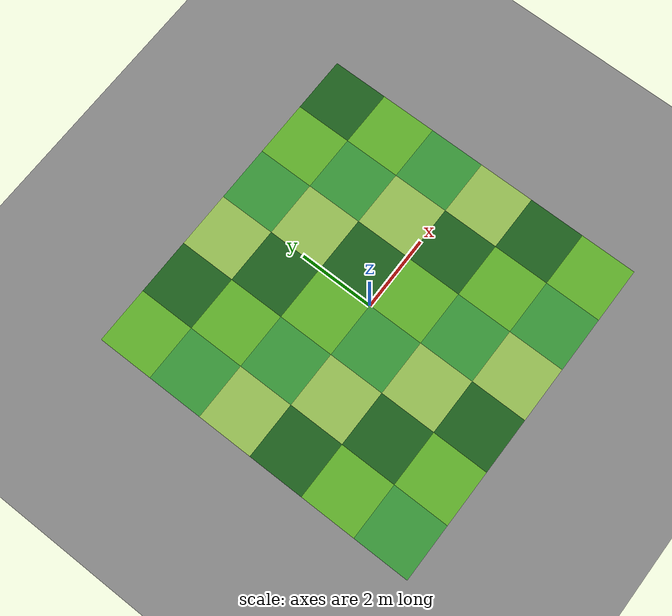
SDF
<?xml version="1.0" ?>
<sdf version="1.9">
  <world name="drone_world">
    <physics type="ode">
      <max_step_size>0.004</max_step_size>
      <real_time_factor>1.0</real_time_factor>
      <real_time_update_rate>250</real_time_update_rate>
    </physics>
    <gravity>0 0 -9.8</gravity>
    <magnetic_field>6e-06 2.3e-05 -4.2e-05</magnetic_field>
    <atmosphere type="adiabatic"/>
    <scene>
      <grid>false</grid>
      <ambient>0.4 0.4 0.4 1</ambient>
      <background>0.7 0.7 0.7 1</background>
      <shadows>true</shadows>
    </scene>

    <!-- Base ground plane: physics/collision only, tiles sit visually on top -->
    <model name="ground_plane">
      <static>true</static>
      <link name="link">
        <collision name="collision">
          <geometry>
            <plane>
              <normal>0 0 1</normal>
              <size>100 100</size>
            </plane>
          </geometry>
          <surface>
            <friction>
              <ode/>
            </friction>
            <bounce/>
            <contact/>
          </surface>
        </collision>
        <visual name="visual">
          <geometry>
            <plane>
              <normal>0 0 1</normal>
              <size>100 100</size>
            </plane>
          </geometry>
          <material>
            <ambient>0.5 0.5 0.5 1</ambient>
            <diffuse>0.5 0.5 0.5 1</diffuse>
          </material>
        </visual>
      </link>
    </model>

    <model name="tile_0">
      <static>true</static>
      <pose>-3.75 -3.75 0.001 0 0 0</pose>
      <link name="link">
        <visual name="visual">
          <geometry>
            <box>
              <size>1.5 1.5 0.002</size>
            </box>
          </geometry>
          <material>
            <ambient>0.2 0.55 0.2 1</ambient>
            <diffuse>0.2 0.55 0.2 1</diffuse>
            <specular>0.1 0.1 0.1 1</specular>
          </material>
        </visual>
      </link>
    </model>
    <model name="tile_1">
      <static>true</static>
      <pose>-3.75 -2.25 0.001 0 0 0</pose>
      <link name="link">
        <visual name="visual">
          <geometry>
            <box>
              <size>1.5 1.5 0.002</size>
            </box>
          </geometry>
          <material>
            <ambient>0.35 0.65 0.15 1</ambient>
            <diffuse>0.35 0.65 0.15 1</diffuse>
            <specular>0.1 0.1 0.1 1</specular>
          </material>
        </visual>
      </link>
    </model>
    <model name="tile_2">
      <static>true</static>
      <pose>-3.75 -0.75 0.001 0 0 0</pose>
      <link name="link">
        <visual name="visual">
          <geometry>
            <box>
              <size>1.5 1.5 0.002</size>
            </box>
          </geometry>
          <material>
            <ambient>0.1 0.35 0.1 1</ambient>
            <diffuse>0.1 0.35 0.1 1</diffuse>
            <specular>0.1 0.1 0.1 1</specular>
          </material>
        </visual>
      </link>
    </model>
    <model name="tile_3">
      <static>true</static>
      <pose>-3.75 0.75 0.001 0 0 0</pose>
      <link name="link">
        <visual name="visual">
          <geometry>
            <box>
              <size>1.5 1.5 0.002</size>
            </box>
          </geometry>
          <material>
            <ambient>0.55 0.7 0.3 1</ambient>
            <diffuse>0.55 0.7 0.3 1</diffuse>
            <specular>0.1 0.1 0.1 1</specular>
          </material>
        </visual>
      </link>
    </model>
    <model name="tile_4">
      <static>true</static>
      <pose>-3.75 2.25 0.001 0 0 0</pose>
      <link name="link">
        <visual name="visual">
          <geometry>
            <box>
              <size>1.5 1.5 0.002</size>
            </box>
          </geometry>
          <material>
            <ambient>0.2 0.55 0.2 1</ambient>
            <diffuse>0.2 0.55 0.2 1</diffuse>
            <specular>0.1 0.1 0.1 1</specular>
          </material>
        </visual>
      </link>
    </model>
    <model name="tile_5">
      <static>true</static>
      <pose>-3.75 3.75 0.001 0 0 0</pose>
      <link name="link">
        <visual name="visual">
          <geometry>
            <box>
              <size>1.5 1.5 0.002</size>
            </box>
          </geometry>
          <material>
            <ambient>0.35 0.65 0.15 1</ambient>
            <diffuse>0.35 0.65 0.15 1</diffuse>
            <specular>0.1 0.1 0.1 1</specular>
          </material>
        </visual>
      </link>
    </model>
    <model name="tile_6">
      <static>true</static>
      <pose>-2.25 -3.75 0.001 0 0 0</pose>
      <link name="link">
        <visual name="visual">
          <geometry>
            <box>
              <size>1.5 1.5 0.002</size>
            </box>
          </geometry>
          <material>
            <ambient>0.35 0.65 0.15 1</ambient>
            <diffuse>0.35 0.65 0.15 1</diffuse>
            <specular>0.1 0.1 0.1 1</specular>
          </material>
        </visual>
      </link>
    </model>
    <model name="tile_7">
      <static>true</static>
      <pose>-2.25 -2.25 0.001 0 0 0</pose>
      <link name="link">
        <visual name="visual">
          <geometry>
            <box>
              <size>1.5 1.5 0.002</size>
            </box>
          </geometry>
          <material>
            <ambient>0.1 0.35 0.1 1</ambient>
            <diffuse>0.1 0.35 0.1 1</diffuse>
            <specular>0.1 0.1 0.1 1</specular>
          </material>
        </visual>
      </link>
    </model>
    <model name="tile_8">
      <static>true</static>
      <pose>-2.25 -0.75 0.001 0 0 0</pose>
      <link name="link">
        <visual name="visual">
          <geometry>
            <box>
              <size>1.5 1.5 0.002</size>
            </box>
          </geometry>
          <material>
            <ambient>0.55 0.7 0.3 1</ambient>
            <diffuse>0.55 0.7 0.3 1</diffuse>
            <specular>0.1 0.1 0.1 1</specular>
          </material>
        </visual>
      </link>
    </model>
    <model name="tile_9">
      <static>true</static>
      <pose>-2.25 0.75 0.001 0 0 0</pose>
      <link name="link">
        <visual name="visual">
          <geometry>
            <box>
              <size>1.5 1.5 0.002</size>
            </box>
          </geometry>
          <material>
            <ambient>0.2 0.55 0.2 1</ambient>
            <diffuse>0.2 0.55 0.2 1</diffuse>
            <specular>0.1 0.1 0.1 1</specular>
          </material>
        </visual>
      </link>
    </model>
    <model name="tile_10">
      <static>true</static>
      <pose>-2.25 2.25 0.001 0 0 0</pose>
      <link name="link">
        <visual name="visual">
          <geometry>
            <box>
              <size>1.5 1.5 0.002</size>
            </box>
          </geometry>
          <material>
            <ambient>0.35 0.65 0.15 1</ambient>
            <diffuse>0.35 0.65 0.15 1</diffuse>
            <specular>0.1 0.1 0.1 1</specular>
          </material>
        </visual>
      </link>
    </model>
    <model name="tile_11">
      <static>true</static>
      <pose>-2.25 3.75 0.001 0 0 0</pose>
      <link name="link">
        <visual name="visual">
          <geometry>
            <box>
              <size>1.5 1.5 0.002</size>
            </box>
          </geometry>
          <material>
            <ambient>0.1 0.35 0.1 1</ambient>
            <diffuse>0.1 0.35 0.1 1</diffuse>
            <specular>0.1 0.1 0.1 1</specular>
          </material>
        </visual>
      </link>
    </model>
    <model name="tile_12">
      <static>true</static>
      <pose>-0.75 -3.75 0.001 0 0 0</pose>
      <link name="link">
        <visual name="visual">
          <geometry>
            <box>
              <size>1.5 1.5 0.002</size>
            </box>
          </geometry>
          <material>
            <ambient>0.1 0.35 0.1 1</ambient>
            <diffuse>0.1 0.35 0.1 1</diffuse>
            <specular>0.1 0.1 0.1 1</specular>
          </material>
        </visual>
      </link>
    </model>
    <model name="tile_13">
      <static>true</static>
      <pose>-0.75 -2.25 0.001 0 0 0</pose>
      <link name="link">
        <visual name="visual">
          <geometry>
            <box>
              <size>1.5 1.5 0.002</size>
            </box>
          </geometry>
          <material>
            <ambient>0.55 0.7 0.3 1</ambient>
            <diffuse>0.55 0.7 0.3 1</diffuse>
            <specular>0.1 0.1 0.1 1</specular>
          </material>
        </visual>
      </link>
    </model>
    <model name="tile_14">
      <static>true</static>
      <pose>-0.75 -0.75 0.001 0 0 0</pose>
      <link name="link">
        <visual name="visual">
          <geometry>
            <box>
              <size>1.5 1.5 0.002</size>
            </box>
          </geometry>
          <material>
            <ambient>0.2 0.55 0.2 1</ambient>
            <diffuse>0.2 0.55 0.2 1</diffuse>
            <specular>0.1 0.1 0.1 1</specular>
          </material>
        </visual>
      </link>
    </model>
    <model name="tile_15">
      <static>true</static>
      <pose>-0.75 0.75 0.001 0 0 0</pose>
      <link name="link">
        <visual name="visual">
          <geometry>
            <box>
              <size>1.5 1.5 0.002</size>
            </box>
          </geometry>
          <material>
            <ambient>0.35 0.65 0.15 1</ambient>
            <diffuse>0.35 0.65 0.15 1</diffuse>
            <specular>0.1 0.1 0.1 1</specular>
          </material>
        </visual>
      </link>
    </model>
    <model name="tile_16">
      <static>true</static>
      <pose>-0.75 2.25 0.001 0 0 0</pose>
      <link name="link">
        <visual name="visual">
          <geometry>
            <box>
              <size>1.5 1.5 0.002</size>
            </box>
          </geometry>
          <material>
            <ambient>0.1 0.35 0.1 1</ambient>
            <diffuse>0.1 0.35 0.1 1</diffuse>
            <specular>0.1 0.1 0.1 1</specular>
          </material>
        </visual>
      </link>
    </model>
    <model name="tile_17">
      <static>true</static>
      <pose>-0.75 3.75 0.001 0 0 0</pose>
      <link name="link">
        <visual name="visual">
          <geometry>
            <box>
              <size>1.5 1.5 0.002</size>
            </box>
          </geometry>
          <material>
            <ambient>0.55 0.7 0.3 1</ambient>
            <diffuse>0.55 0.7 0.3 1</diffuse>
            <specular>0.1 0.1 0.1 1</specular>
          </material>
        </visual>
      </link>
    </model>
    <model name="tile_18">
      <static>true</static>
      <pose>0.75 -3.75 0.001 0 0 0</pose>
      <link name="link">
        <visual name="visual">
          <geometry>
            <box>
              <size>1.5 1.5 0.002</size>
            </box>
          </geometry>
          <material>
            <ambient>0.55 0.7 0.3 1</ambient>
            <diffuse>0.55 0.7 0.3 1</diffuse>
            <specular>0.1 0.1 0.1 1</specular>
          </material>
        </visual>
      </link>
    </model>
    <model name="tile_19">
      <static>true</static>
      <pose>0.75 -2.25 0.001 0 0 0</pose>
      <link name="link">
        <visual name="visual">
          <geometry>
            <box>
              <size>1.5 1.5 0.002</size>
            </box>
          </geometry>
          <material>
            <ambient>0.2 0.55 0.2 1</ambient>
            <diffuse>0.2 0.55 0.2 1</diffuse>
            <specular>0.1 0.1 0.1 1</specular>
          </material>
        </visual>
      </link>
    </model>
    <model name="tile_20">
      <static>true</static>
      <pose>0.75 -0.75 0.001 0 0 0</pose>
      <link name="link">
        <visual name="visual">
          <geometry>
            <box>
              <size>1.5 1.5 0.002</size>
            </box>
          </geometry>
          <material>
            <ambient>0.35 0.65 0.15 1</ambient>
            <diffuse>0.35 0.65 0.15 1</diffuse>
            <specular>0.1 0.1 0.1 1</specular>
          </material>
        </visual>
      </link>
    </model>
    <model name="tile_21">
      <static>true</static>
      <pose>0.75 0.75 0.001 0 0 0</pose>
      <link name="link">
        <visual name="visual">
          <geometry>
            <box>
              <size>1.5 1.5 0.002</size>
            </box>
          </geometry>
          <material>
            <ambient>0.1 0.35 0.1 1</ambient>
            <diffuse>0.1 0.35 0.1 1</diffuse>
            <specular>0.1 0.1 0.1 1</specular>
          </material>
        </visual>
      </link>
    </model>
    <model name="tile_22">
      <static>true</static>
      <pose>0.75 2.25 0.001 0 0 0</pose>
      <link name="link">
        <visual name="visual">
          <geometry>
            <box>
              <size>1.5 1.5 0.002</size>
            </box>
          </geometry>
          <material>
            <ambient>0.55 0.7 0.3 1</ambient>
            <diffuse>0.55 0.7 0.3 1</diffuse>
            <specular>0.1 0.1 0.1 1</specular>
          </material>
        </visual>
      </link>
    </model>
    <model name="tile_23">
      <static>true</static>
      <pose>0.75 3.75 0.001 0 0 0</pose>
      <link name="link">
        <visual name="visual">
          <geometry>
            <box>
              <size>1.5 1.5 0.002</size>
            </box>
          </geometry>
          <material>
            <ambient>0.2 0.55 0.2 1</ambient>
            <diffuse>0.2 0.55 0.2 1</diffuse>
            <specular>0.1 0.1 0.1 1</specular>
          </material>
        </visual>
      </link>
    </model>
    <model name="tile_24">
      <static>true</static>
      <pose>2.25 -3.75 0.001 0 0 0</pose>
      <link name="link">
        <visual name="visual">
          <geometry>
            <box>
              <size>1.5 1.5 0.002</size>
            </box>
          </geometry>
          <material>
            <ambient>0.2 0.55 0.2 1</ambient>
            <diffuse>0.2 0.55 0.2 1</diffuse>
            <specular>0.1 0.1 0.1 1</specular>
          </material>
        </visual>
      </link>
    </model>
    <model name="tile_25">
      <static>true</static>
      <pose>2.25 -2.25 0.001 0 0 0</pose>
      <link name="link">
        <visual name="visual">
          <geometry>
            <box>
              <size>1.5 1.5 0.002</size>
            </box>
          </geometry>
          <material>
            <ambient>0.35 0.65 0.15 1</ambient>
            <diffuse>0.35 0.65 0.15 1</diffuse>
            <specular>0.1 0.1 0.1 1</specular>
          </material>
        </visual>
      </link>
    </model>
    <model name="tile_26">
      <static>true</static>
      <pose>2.25 -0.75 0.001 0 0 0</pose>
      <link name="link">
        <visual name="visual">
          <geometry>
            <box>
              <size>1.5 1.5 0.002</size>
            </box>
          </geometry>
          <material>
            <ambient>0.1 0.35 0.1 1</ambient>
            <diffuse>0.1 0.35 0.1 1</diffuse>
            <specular>0.1 0.1 0.1 1</specular>
          </material>
        </visual>
      </link>
    </model>
    <model name="tile_27">
      <static>true</static>
      <pose>2.25 0.75 0.001 0 0 0</pose>
      <link name="link">
        <visual name="visual">
          <geometry>
            <box>
              <size>1.5 1.5 0.002</size>
            </box>
          </geometry>
          <material>
            <ambient>0.55 0.7 0.3 1</ambient>
            <diffuse>0.55 0.7 0.3 1</diffuse>
            <specular>0.1 0.1 0.1 1</specular>
          </material>
        </visual>
      </link>
    </model>
    <model name="tile_28">
      <static>true</static>
      <pose>2.25 2.25 0.001 0 0 0</pose>
      <link name="link">
        <visual name="visual">
          <geometry>
            <box>
              <size>1.5 1.5 0.002</size>
            </box>
          </geometry>
          <material>
            <ambient>0.2 0.55 0.2 1</ambient>
            <diffuse>0.2 0.55 0.2 1</diffuse>
            <specular>0.1 0.1 0.1 1</specular>
          </material>
        </visual>
      </link>
    </model>
    <model name="tile_29">
      <static>true</static>
      <pose>2.25 3.75 0.001 0 0 0</pose>
      <link name="link">
        <visual name="visual">
          <geometry>
            <box>
              <size>1.5 1.5 0.002</size>
            </box>
          </geometry>
          <material>
            <ambient>0.35 0.65 0.15 1</ambient>
            <diffuse>0.35 0.65 0.15 1</diffuse>
            <specular>0.1 0.1 0.1 1</specular>
          </material>
        </visual>
      </link>
    </model>
    <model name="tile_30">
      <static>true</static>
      <pose>3.75 -3.75 0.001 0 0 0</pose>
      <link name="link">
        <visual name="visual">
          <geometry>
            <box>
              <size>1.5 1.5 0.002</size>
            </box>
          </geometry>
          <material>
            <ambient>0.35 0.65 0.15 1</ambient>
            <diffuse>0.35 0.65 0.15 1</diffuse>
            <specular>0.1 0.1 0.1 1</specular>
          </material>
        </visual>
      </link>
    </model>
    <model name="tile_31">
      <static>true</static>
      <pose>3.75 -2.25 0.001 0 0 0</pose>
      <link name="link">
        <visual name="visual">
          <geometry>
            <box>
              <size>1.5 1.5 0.002</size>
            </box>
          </geometry>
          <material>
            <ambient>0.1 0.35 0.1 1</ambient>
            <diffuse>0.1 0.35 0.1 1</diffuse>
            <specular>0.1 0.1 0.1 1</specular>
          </material>
        </visual>
      </link>
    </model>
    <model name="tile_32">
      <static>true</static>
      <pose>3.75 -0.75 0.001 0 0 0</pose>
      <link name="link">
        <visual name="visual">
          <geometry>
            <box>
              <size>1.5 1.5 0.002</size>
            </box>
          </geometry>
          <material>
            <ambient>0.55 0.7 0.3 1</ambient>
            <diffuse>0.55 0.7 0.3 1</diffuse>
            <specular>0.1 0.1 0.1 1</specular>
          </material>
        </visual>
      </link>
    </model>
    <model name="tile_33">
      <static>true</static>
      <pose>3.75 0.75 0.001 0 0 0</pose>
      <link name="link">
        <visual name="visual">
          <geometry>
            <box>
              <size>1.5 1.5 0.002</size>
            </box>
          </geometry>
          <material>
            <ambient>0.2 0.55 0.2 1</ambient>
            <diffuse>0.2 0.55 0.2 1</diffuse>
            <specular>0.1 0.1 0.1 1</specular>
          </material>
        </visual>
      </link>
    </model>
    <model name="tile_34">
      <static>true</static>
      <pose>3.75 2.25 0.001 0 0 0</pose>
      <link name="link">
        <visual name="visual">
          <geometry>
            <box>
              <size>1.5 1.5 0.002</size>
            </box>
          </geometry>
          <material>
            <ambient>0.35 0.65 0.15 1</ambient>
            <diffuse>0.35 0.65 0.15 1</diffuse>
            <specular>0.1 0.1 0.1 1</specular>
          </material>
        </visual>
      </link>
    </model>
    <model name="tile_35">
      <static>true</static>
      <pose>3.75 3.75 0.001 0 0 0</pose>
      <link name="link">
        <visual name="visual">
          <geometry>
            <box>
              <size>1.5 1.5 0.002</size>
            </box>
          </geometry>
          <material>
            <ambient>0.1 0.35 0.1 1</ambient>
            <diffuse>0.1 0.35 0.1 1</diffuse>
            <specular>0.1 0.1 0.1 1</specular>
          </material>
        </visual>
      </link>
    </model>

    <light name="sunUTC" type="directional">
      <pose>0 0 500 0 -0 0</pose>
      <cast_shadows>true</cast_shadows>
      <intensity>1</intensity>
      <direction>0.001 0.625 -0.78</direction>
      <diffuse>0.904 0.904 0.904 1</diffuse>
      <specular>0.271 0.271 0.271 1</specular>
      <attenuation>
        <range>2000</range>
        <linear>0</linear>
        <constant>1</constant>
        <quadratic>0</quadratic>
      </attenuation>
      <spot>
        <inner_angle>0</inner_angle>
        <outer_angle>0</outer_angle>
        <falloff>0</falloff>
      </spot>
    </light>

    <spherical_coordinates>
      <surface_model>EARTH_WGS84</surface_model>
      <world_frame_orientation>ENU</world_frame_orientation>
      <latitude_deg>47.397971057728974</latitude_deg>
      <longitude_deg>8.546163739800146</longitude_deg>
      <elevation>0</elevation>
    </spherical_coordinates>
  </world>
</sdf>
